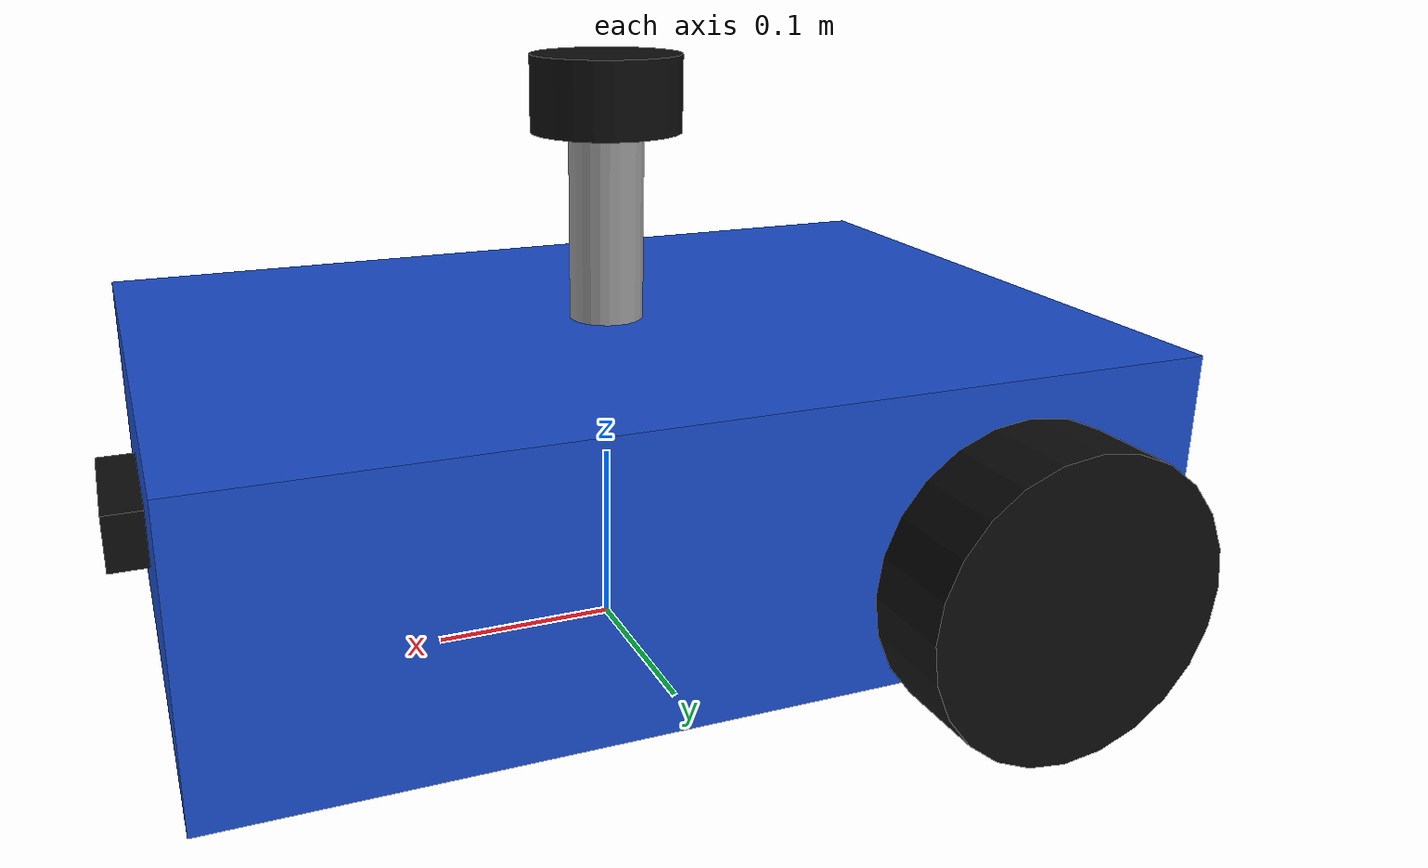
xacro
<?xml version="1.0"?>
<robot name="mobile_robot" xmlns:xacro="http://www.ros.org/wiki/xacro">

  <!-- ===== PROPERTIES ===== -->
  <!-- Base (chassis) -->
  <xacro:property name="base_length" value="0.5"/>
  <xacro:property name="base_width"  value="0.35"/>
  <xacro:property name="base_height" value="0.15"/>
  <xacro:property name="base_mass"   value="5.0"/>
  <xacro:property name="base_offset" value="0.025"/>   <!-- chassis center above the wheel axle -->

  <!-- Drive wheels (rear) -->
  <xacro:property name="wheel_radius"     value="0.08"/>
  <xacro:property name="wheel_width"      value="0.05"/>
  <xacro:property name="wheel_mass"       value="0.5"/>
  <xacro:property name="wheel_separation" value="0.4"/>   <!-- left-right, center to center -->
  <xacro:property name="wheel_x"          value="-0.15"/> <!-- rear axle position -->

  <!-- Caster (front) -->
  <xacro:property name="caster_radius" value="0.04"/>
  <xacro:property name="caster_mass"   value="0.2"/>
  <xacro:property name="caster_x"      value="0.18"/>

  <!-- Sensor mast and lidar -->
  <xacro:property name="mast_radius"  value="0.02"/>
  <xacro:property name="mast_height"  value="0.1"/>
  <xacro:property name="lidar_radius" value="0.04"/>
  <xacro:property name="lidar_height" value="0.04"/>

  <!-- ===== MATERIALS ===== -->
  <material name="blue">
    <color rgba="0.1 0.3 0.8 1"/>
  </material>
  <material name="black">
    <color rgba="0.05 0.05 0.05 1"/>
  </material>
  <material name="grey">
    <color rgba="0.6 0.6 0.6 1"/>
  </material>

  <!-- ===== INERTIA MACROS ===== -->
  <xacro:macro name="inertial_box" params="mass x y z xyz">
    <inertial>
      <origin xyz="${xyz}" rpy="0 0 0"/>
      <mass value="${mass}"/>
      <inertia ixx="${mass*(y*y+z*z)/12}" ixy="0" ixz="0"
               iyy="${mass*(x*x+z*z)/12}" iyz="0"
               izz="${mass*(x*x+y*y)/12}"/>
    </inertial>
  </xacro:macro>

  <xacro:macro name="inertial_sphere" params="mass r xyz">
    <inertial>
      <origin xyz="${xyz}" rpy="0 0 0"/>
      <mass value="${mass}"/>
      <inertia ixx="${2*mass*r*r/5}" ixy="0" ixz="0"
               iyy="${2*mass*r*r/5}" iyz="0"
               izz="${2*mass*r*r/5}"/>
    </inertial>
  </xacro:macro>

  <!-- Wheel inertia: a cylinder whose axis lies along y (the axle) -->
  <xacro:macro name="inertial_wheel" params="mass r h">
    <inertial>
      <origin xyz="0 0 0" rpy="0 0 0"/>
      <mass value="${mass}"/>
      <inertia ixx="${mass*(3*r*r+h*h)/12}" ixy="0" ixz="0"
               iyy="${mass*r*r/2}" iyz="0"
               izz="${mass*(3*r*r+h*h)/12}"/>
    </inertial>
  </xacro:macro>

  <!-- ===== WHEEL MACRO. reflect = 1 for left, -1 for right ===== -->
  <xacro:macro name="wheel" params="side reflect">
    <link name="${side}_wheel">
      <visual>
        <geometry>
          <cylinder radius="${wheel_radius}" length="${wheel_width}"/>
        </geometry>
        <origin xyz="0 0 0" rpy="${pi/2} 0 0"/>   <!-- turn the cylinder so its axis lies along y -->
        <material name="black"/>
      </visual>
      <collision>
        <geometry>
          <cylinder radius="${wheel_radius}" length="${wheel_width}"/>
        </geometry>
        <origin xyz="0 0 0" rpy="${pi/2} 0 0"/>
      </collision>
      <xacro:inertial_wheel mass="${wheel_mass}" r="${wheel_radius}" h="${wheel_width}"/>
    </link>

    <!-- Same orientation and axis for both sides: positive rotation drives both wheels forward -->
    <joint name="${side}_wheel_joint" type="continuous">
      <parent link="base_link"/>
      <child link="${side}_wheel"/>
      <origin xyz="${wheel_x} ${reflect*wheel_separation/2} 0" rpy="0 0 0"/>
      <axis xyz="0 1 0"/>
    </joint>

    <!-- Grip on the ground -->
    <gazebo reference="${side}_wheel">
      <mu1>1.0</mu1>
      <mu2>1.0</mu2>
    </gazebo>
  </xacro:macro>

  <!-- ===== ROBOT ===== -->
  <!-- base_footprint: on the ground, below the robot's center. Navigation uses this as the robot's position -->
  <link name="base_footprint"/>

  <!-- base_link: at the height of the wheel axle -->
  <link name="base_link">
    <visual>
      <geometry>
        <box size="${base_length} ${base_width} ${base_height}"/>
      </geometry>
      <origin xyz="0 0 ${base_offset}" rpy="0 0 0"/>
      <material name="blue"/>
    </visual>
    <collision>
      <geometry>
        <box size="${base_length} ${base_width} ${base_height}"/>
      </geometry>
      <origin xyz="0 0 ${base_offset}" rpy="0 0 0"/>
    </collision>
    <xacro:inertial_box mass="${base_mass}" x="${base_length}" y="${base_width}" z="${base_height}" xyz="0 0 ${base_offset}"/>
  </link>

  <joint name="base_joint" type="fixed">
    <parent link="base_footprint"/>
    <child link="base_link"/>
    <origin xyz="0 0 ${wheel_radius}" rpy="0 0 0"/>
  </joint>

  <!-- Rear drive wheels -->
  <xacro:wheel side="left"  reflect="1"/>
  <xacro:wheel side="right" reflect="-1"/>

  <!-- Front caster: a ball that slides freely in every direction -->
  <link name="caster">
    <visual>
      <geometry>
        <sphere radius="${caster_radius}"/>
      </geometry>
      <material name="grey"/>
    </visual>
    <collision>
      <geometry>
        <sphere radius="${caster_radius}"/>
      </geometry>
    </collision>
    <xacro:inertial_sphere mass="${caster_mass}" r="${caster_radius}" xyz="0 0 0"/>
  </link>

  <!-- Placed so the ball touches the ground, like the wheels -->
  <joint name="caster_joint" type="fixed">
    <parent link="base_link"/>
    <child link="caster"/>
    <origin xyz="${caster_x} 0 ${caster_radius - wheel_radius}" rpy="0 0 0"/>
  </joint>

  <!-- No friction, so the caster never resists turning -->
  <gazebo reference="caster">
    <mu1>0.0</mu1>
    <mu2>0.0</mu2>
  </gazebo>

  <!-- Sensor mast: lifts the lidar above the chassis so it doesn't see the robot itself -->
  <link name="mast">
    <visual>
      <geometry>
        <cylinder radius="${mast_radius}" length="${mast_height}"/>
      </geometry>
      <material name="grey"/>
    </visual>
    <collision>
      <geometry>
        <cylinder radius="${mast_radius}" length="${mast_height}"/>
      </geometry>
    </collision>
    <xacro:inertial_sphere mass="0.1" r="${mast_radius}" xyz="0 0 0"/>
  </link>

  <joint name="mast_joint" type="fixed">
    <parent link="base_link"/>
    <child link="mast"/>
    <origin xyz="0 0 ${base_offset + base_height/2 + mast_height/2}" rpy="0 0 0"/>
  </joint>

  <!-- Lidar body on top of the mast -->
  <link name="lidar_link">
    <visual>
      <geometry>
        <cylinder radius="${lidar_radius}" length="${lidar_height}"/>
      </geometry>
      <material name="black"/>
    </visual>
    <collision>
      <geometry>
        <cylinder radius="${lidar_radius}" length="${lidar_height}"/>
      </geometry>
    </collision>
    <xacro:inertial_sphere mass="0.2" r="${lidar_radius}" xyz="0 0 0"/>
  </link>

  <joint name="lidar_joint" type="fixed">
    <parent link="mast"/>
    <child link="lidar_link"/>
    <origin xyz="0 0 ${mast_height/2 + lidar_height/2}" rpy="0 0 0"/>
  </joint>

  <!-- ===== LIDAR SENSOR ===== -->
  <gazebo reference="lidar_link">
    <sensor name="lidar" type="gpu_lidar">
      <pose>0 0 0 0 0 0</pose>
      <topic>scan</topic>
      <gz_frame_id>lidar_link</gz_frame_id>
      <update_rate>10</update_rate>
      <always_on>true</always_on>
      <visualize>true</visualize>
      <lidar>
        <scan>
          <horizontal>
            <samples>360</samples>
            <resolution>1</resolution>
            <min_angle>-3.14159</min_angle>
            <max_angle>3.14159</max_angle>
          </horizontal>
        </scan>
        <range>
          <min>0.12</min>
          <max>12.0</max>
          <resolution>0.01</resolution>
        </range>
      </lidar>
    </sensor>
  </gazebo>

  <!-- ===== DEPTH CAMERA ===== -->
  <!-- Camera body on the front face of the chassis, facing forward -->
  <link name="camera_link">
    <visual>
      <geometry>
        <box size="0.02 0.08 0.03"/>
      </geometry>
      <material name="black"/>
    </visual>
  </link>

  <joint name="camera_joint" type="fixed">
    <parent link="base_link"/>
    <child link="camera_link"/>
    <origin xyz="${base_length/2 + 0.01} 0 ${base_offset}" rpy="0 0 0"/>
  </joint>

  <!-- Optical frame (z forward, x right, y down), for image-based tools later -->
  <link name="camera_link_optical"/>

  <joint name="camera_optical_joint" type="fixed">
    <parent link="camera_link"/>
    <child link="camera_link_optical"/>
    <origin xyz="0 0 0" rpy="${-pi/2} 0 ${-pi/2}"/>
  </joint>

  <gazebo reference="camera_link">
    <sensor name="depth_camera" type="rgbd_camera">
      <pose>0 0 0 0 0 0</pose>
      <topic>depth_camera</topic>
      <gz_frame_id>camera_link</gz_frame_id>
      <update_rate>10</update_rate>
      <always_on>true</always_on>
      <visualize>true</visualize>
      <camera>
        <horizontal_fov>1.35</horizontal_fov>
        <image>
          <width>640</width>
          <height>480</height>
          <format>R8G8B8</format>
        </image>
        <clip>
          <near>0.05</near>
          <far>10</far>
        </clip>
        <depth_camera>
          <clip>
            <near>0.1</near>
            <far>10</far>
          </clip>
        </depth_camera>
      </camera>
    </sensor>
  </gazebo>

  <!-- ===== DRIVING AND JOINT STATES (Gazebo systems) ===== -->
  <gazebo>
    <!-- Diff drive: takes velocity commands, drives the wheels, publishes odometry and the odom -> base_footprint transform -->
    <plugin filename="gz-sim-diff-drive-system" name="gz::sim::systems::DiffDrive">
      <left_joint>left_wheel_joint</left_joint>
      <right_joint>right_wheel_joint</right_joint>
      <wheel_separation>${wheel_separation}</wheel_separation>
      <wheel_radius>${wheel_radius}</wheel_radius>
      <max_linear_acceleration>1.0</max_linear_acceleration>
      <topic>cmd_vel</topic>
      <odom_topic>odom</odom_topic>
      <tf_topic>tf</tf_topic>
      <frame_id>odom</frame_id>
      <child_frame_id>base_footprint</child_frame_id>
      <odom_publisher_frequency>30</odom_publisher_frequency>
    </plugin>

    <!-- Joint states: publishes the wheel positions, so robot_state_publisher can show the wheels turning -->
    <plugin filename="gz-sim-joint-state-publisher-system" name="gz::sim::systems::JointStatePublisher">
      <topic>joint_states</topic>
    </plugin>
  </gazebo>

  <gazebo>
    <plugin filename="gz_ros2_control-system" name="gz_ros2_control::GazeboSimROS2ControlPlugin"/>
  </gazebo>

</robot>
